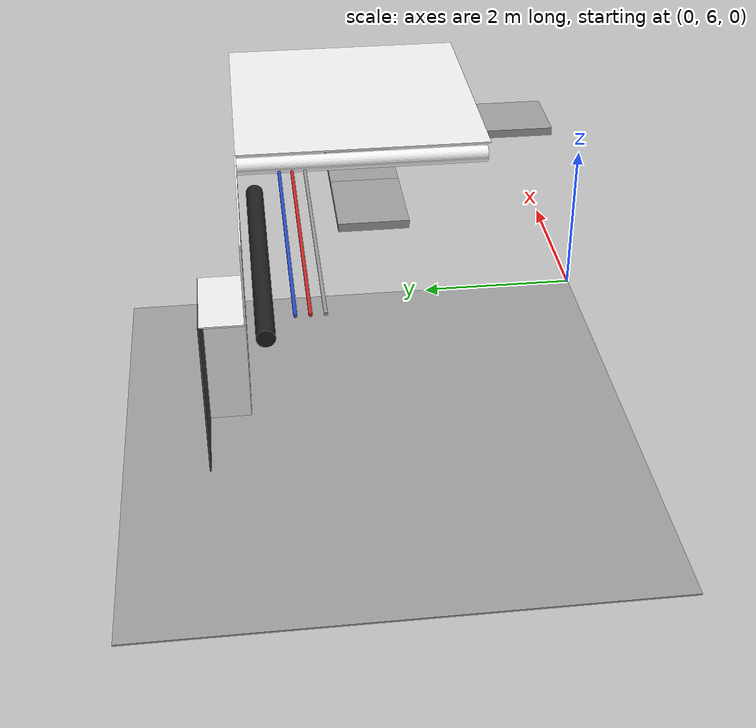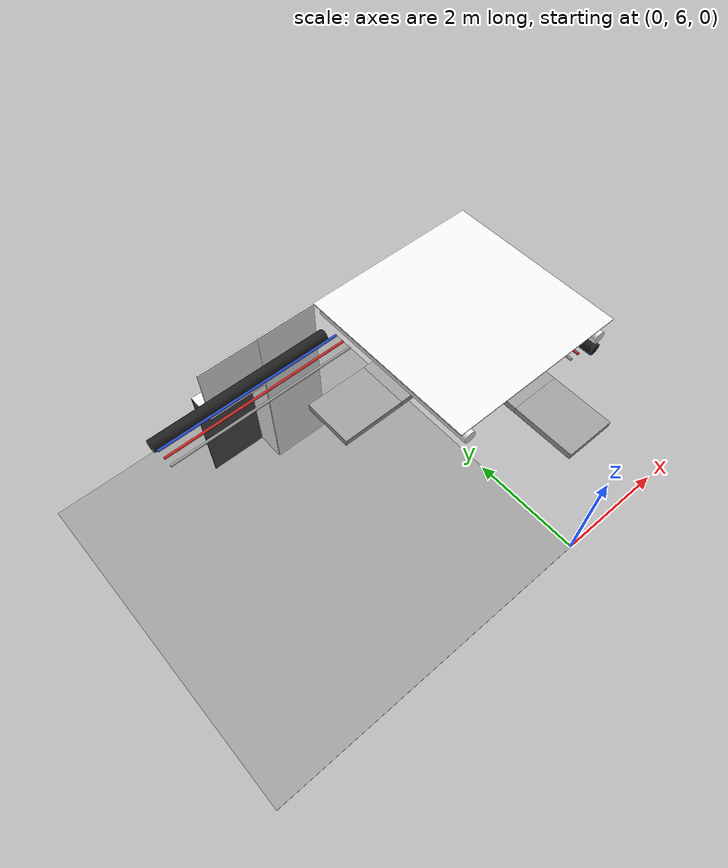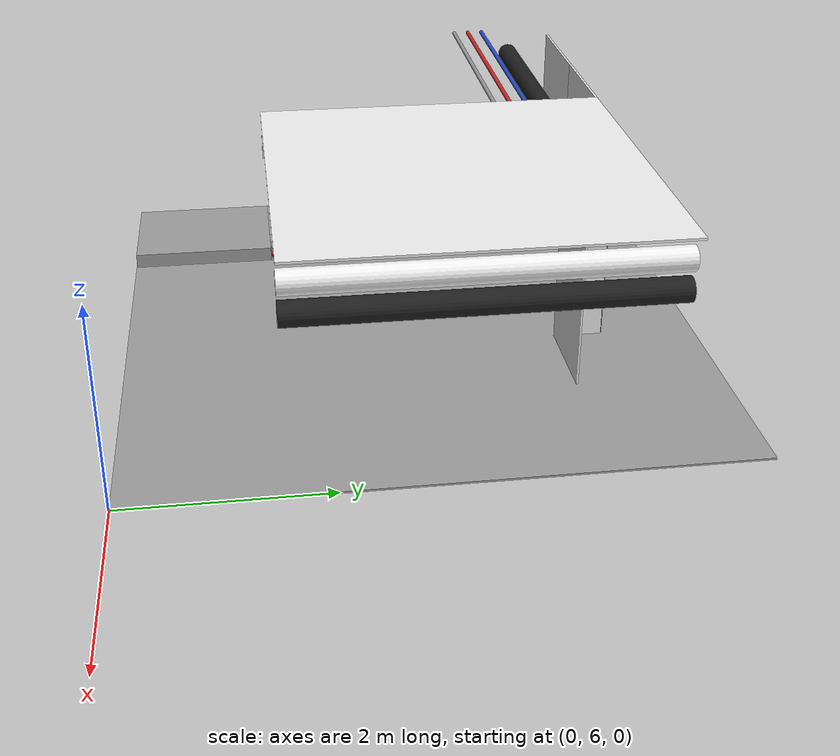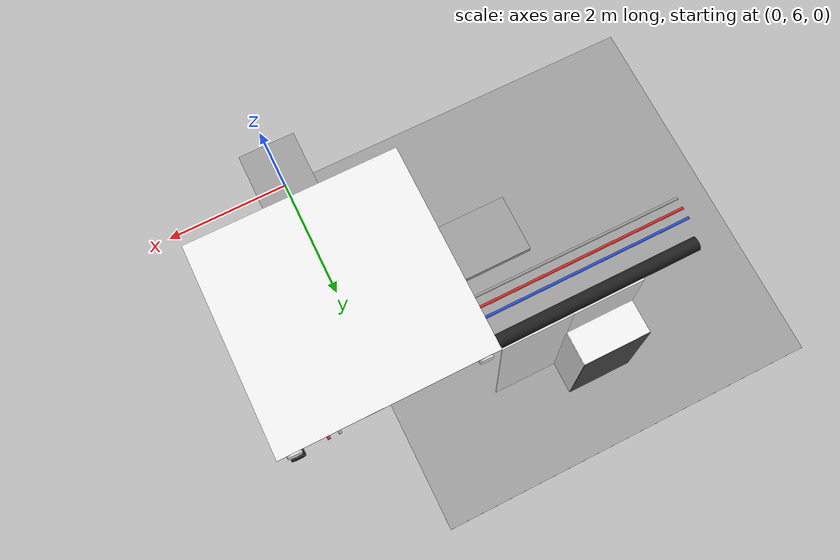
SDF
<sdf version="1.6">
 <world name="default">
  <model name="ceiling_1_0_2_1_2">
   <pose>0.0 7.0 2.55 0.0 0.0 3.14</pose>
   <link name="link_1">
    <visual name="visual">
     <geometry><box><size>0.8 1 0.1</size></box></geometry>
     <material>
      <script><uri>file://media/materials/scripts/gazebo.material</uri><name>Gazebo/Grey</name></script>
     </material>
    </visual>
    <collision name="collision"><geometry><box><size>0.8 1 0.1</size></box></geometry></collision>
   </link>
   <static>1</static>
  </model>
  <model name="wall_top_0_3_0_3">
   <static>1</static>
   <pose>0.0 9.0 3.0 1.57 0.0 0.0</pose>
   <link name="link">
    <collision name="collision"><geometry><box><size>3.0 0.02 3.0</size></box></geometry></collision>
    <visual name="visual">
     <material>
      <script><name>Gazebo/White</name><uri>file://media/materials/scripts/gazebo.material</uri></script>
     </material>
     <geometry><box><size>3.0 0.02 3.0</size></box></geometry>
    </visual>
   </link>
  </model>
  <model name="ceiling_1_0_3_0_3">
   <pose>0.0 8.0 2.55 0.0 0.0 0.0</pose>
   <link name="link_1">
    <visual name="visual">
     <geometry><box><size>0.8 1 0.1</size></box></geometry>
     <material>
      <script><uri>file://media/materials/scripts/gazebo.material</uri><name>Gazebo/Grey</name></script>
     </material>
    </visual>
    <collision name="collision"><geometry><box><size>0.8 1 0.1</size></box></geometry></collision>
   </link>
   <static>1</static>
  </model>
  <model name="ceiling_1_0_3_1_3">
   <pose>-1.0 9.0 2.55 0.0 0.0 1.57</pose>
   <link name="link_1">
    <visual name="visual">
     <geometry><box><size>0.8 1 0.1</size></box></geometry>
     <material>
      <script><uri>file://media/materials/scripts/gazebo.material</uri><name>Gazebo/Grey</name></script>
     </material>
    </visual>
    <collision name="collision"><geometry><box><size>0.8 1 0.1</size></box></geometry></collision>
   </link>
   <static>1</static>
  </model>
  <model name="white_pipe_left_0_3_0_3">
   <static>1</static>
   <pose>0.0 9.0 2.76 0.0 0.0 0.0</pose>
   <link name="link_0">
    <visual name="visual">
     <pose>-1.3 0 0 1.57 0 0</pose>
     <geometry><cylinder><radius>0.1</radius><length>3.0</length></cylinder></geometry>
     <material>
      <script><uri>file://media/materials/scripts/gazebo.material</uri><name>Gazebo/White</name></script>
     </material>
    </visual>
    <collision name="collision">
     <pose>-1.3 0 0 1.57 0 0</pose>
     <geometry><cylinder><radius>0.1</radius><length>3.0</length></cylinder></geometry>
    </collision>
   </link>
  </model>
  <model name="white_pipe_right_0_3_0_3">
   <static>1</static>
   <pose>0.0 9.0 2.76 0.0 0.0 0.0</pose>
   <link name="link_0">
    <visual name="visual">
     <pose>1.3 0 0 1.57 0 0</pose>
     <geometry><cylinder><radius>0.1</radius><length>3.0</length></cylinder></geometry>
     <material>
      <script><uri>file://media/materials/scripts/gazebo.material</uri><name>Gazebo/White</name></script>
     </material>
    </visual>
    <collision name="collision">
     <pose>1.3 0 0 1.57 0 0</pose>
     <geometry><cylinder><radius>0.1</radius><length>3.0</length></cylinder></geometry>
    </collision>
   </link>
  </model>
  <model name="black_pipe_right_0_3_0_3">
   <static>1</static>
   <pose>0.0 9.0 2.76 0.0 0.0 0.0</pose>
   <link name="link_0">
    <visual name="visual">
     <pose>1.3 0 -0.25 1.57 0 0</pose>
     <geometry><cylinder><radius>0.1</radius><length>3.0</length></cylinder></geometry>
     <material>
      <script><uri>file://media/materials/scripts/gazebo.material</uri><name>Gazebo/Black</name></script>
     </material>
    </visual>
    <collision name="collision">
     <pose>1.3 0 -0.25 1.57 0 0</pose>
     <geometry><cylinder><radius>0.1</radius><length>3.0</length></cylinder></geometry>
    </collision>
   </link>
  </model>
  <model name="grey_pipe_right_0_3_0_3">
   <static>1</static>
   <pose>0.0 9.0 2.76 0.0 0.0 0.0</pose>
   <link name="link_0">
    <visual name="visual">
     <pose>0.7 0 0 1.57 0 0</pose>
     <geometry><cylinder><radius>0.02</radius><length>3.0</length></cylinder></geometry>
     <material>
      <script><uri>file://media/materials/scripts/gazebo.material</uri><name>Gazebo/Grey</name></script>
     </material>
    </visual>
    <collision name="collision">
     <pose>0.7 0 0 1.57 0 0</pose>
     <geometry><cylinder><radius>0.02</radius><length>3.0</length></cylinder></geometry>
    </collision>
   </link>
  </model>
  <model name="red_pipe_right_0_3_0_3">
   <static>1</static>
   <pose>0.0 9.0 2.76 0.0 0.0 0.0</pose>
   <link name="link_0">
    <visual name="visual">
     <pose>0.85 0 0 1.57 0 0</pose>
     <geometry><cylinder><radius>0.02</radius><length>3.0</length></cylinder></geometry>
     <material>
      <script><uri>file://media/materials/scripts/gazebo.material</uri><name>Gazebo/Red</name></script>
     </material>
    </visual>
    <collision name="collision">
     <pose>0.85 0 0 1.57 0 0</pose>
     <geometry><cylinder><radius>0.02</radius><length>3.0</length></cylinder></geometry>
    </collision>
   </link>
  </model>
  <model name="ceiling_1_-1_3_1_1">
   <pose>-2.0 9.0 2.55 0.0 0.0 1.57</pose>
   <link name="link_1">
    <visual name="visual">
     <geometry><box><size>0.8 1 0.1</size></box></geometry>
     <material>
      <script><uri>file://media/materials/scripts/gazebo.material</uri><name>Gazebo/Grey</name></script>
     </material>
    </visual>
    <collision name="collision"><geometry><box><size>0.8 1 0.1</size></box></geometry></collision>
   </link>
   <static>1</static>
  </model>
  <model name="black_pipe_right_-1_3_0_1">
   <static>1</static>
   <pose>-3.0 9.0 2.76 0.0 0.0 1.57</pose>
   <link name="link_0">
    <visual name="visual">
     <pose>1.3 0 -0.25 1.57 0 0</pose>
     <geometry><cylinder><radius>0.1</radius><length>3.0</length></cylinder></geometry>
     <material>
      <script><uri>file://media/materials/scripts/gazebo.material</uri><name>Gazebo/Black</name></script>
     </material>
    </visual>
    <collision name="collision">
     <pose>1.3 0 -0.25 1.57 0 0</pose>
     <geometry><cylinder><radius>0.1</radius><length>3.0</length></cylinder></geometry>
    </collision>
   </link>
  </model>
  <model name="grey_pipe_right_-1_3_0_1">
   <static>1</static>
   <pose>-3.0 9.0 2.76 0.0 0.0 1.57</pose>
   <link name="link_0">
    <visual name="visual">
     <pose>0.7 0 0 1.57 0 0</pose>
     <geometry><cylinder><radius>0.02</radius><length>3.0</length></cylinder></geometry>
     <material>
      <script><uri>file://media/materials/scripts/gazebo.material</uri><name>Gazebo/Grey</name></script>
     </material>
    </visual>
    <collision name="collision">
     <pose>0.7 0 0 1.57 0 0</pose>
     <geometry><cylinder><radius>0.02</radius><length>3.0</length></cylinder></geometry>
    </collision>
   </link>
  </model>
  <model name="red_pipe_right_-1_3_0_1">
   <static>1</static>
   <pose>-3.0 9.0 2.76 0.0 0.0 1.57</pose>
   <link name="link_0">
    <visual name="visual">
     <pose>0.85 0 0 1.57 0 0</pose>
     <geometry><cylinder><radius>0.02</radius><length>3.0</length></cylinder></geometry>
     <material>
      <script><uri>file://media/materials/scripts/gazebo.material</uri><name>Gazebo/Red</name></script>
     </material>
    </visual>
    <collision name="collision">
     <pose>0.85 0 0 1.57 0 0</pose>
     <geometry><cylinder><radius>0.02</radius><length>3.0</length></cylinder></geometry>
    </collision>
   </link>
  </model>
  <model name="blue_pipe_right_-1_3_0_1">
   <static>1</static>
   <pose>-3.0 9.0 2.76 0.0 0.0 1.57</pose>
   <link name="link_0">
    <visual name="visual">
     <pose>1 0 0 1.57 0 0</pose>
     <geometry><cylinder><radius>0.02</radius><length>3.0</length></cylinder></geometry>
     <material>
      <script><uri>file://media/materials/scripts/gazebo.material</uri><name>Gazebo/Blue</name></script>
     </material>
    </visual>
    <collision name="collision">
     <pose>1 0 0 1.57 0 0</pose>
     <geometry><cylinder><radius>0.02</radius><length>3.0</length></cylinder></geometry>
    </collision>
   </link>
  </model>
  <model name="wall_right_front_right_-1_3_0_1">
   <static>1</static>
   <pose>-2.0 10.5 1.5 0.0 0.0 3.14</pose>
   <link name="link">
    <collision name="collision"><geometry><box><size>1.0 0.02 3.0</size></box></geometry></collision>
    <visual name="visual">
     <material>
      <script><name>Gazebo/White</name><uri>file://media/materials/scripts/gazebo.material</uri></script>
     </material>
     <geometry><box><size>1.0 0.02 3.0</size></box></geometry>
    </visual>
   </link>
  </model>
  <model name="wall_right_front_up_-1_3_0_1">
   <static>1</static>
   <pose>-3.0 10.5 2.5 0.0 0.0 3.14</pose>
   <link name="link">
    <collision name="collision"><geometry><box><size>1.0 0.02 1.0</size></box></geometry></collision>
    <visual name="visual">
     <material>
      <script><name>Gazebo/White</name><uri>file://media/materials/scripts/gazebo.material</uri></script>
     </material>
     <geometry><box><size>1.0 0.02 1.0</size></box></geometry>
    </visual>
   </link>
  </model>
  <model name="wall_right_inside_back_-1_3_0_1">
   <static>1</static>
   <pose>-3.0 11.0 1.0 0.0 0.0 3.14</pose>
   <link name="link">
    <collision name="collision"><geometry><box><size>1 0.02 2</size></box></geometry></collision>
    <visual name="visual">
     <material>
      <script><name>Gazebo/DarkGrey</name><uri>file://media/materials/scripts/gazebo.material</uri></script>
     </material>
     <geometry><box><size>1 0.02 2</size></box></geometry>
    </visual>
   </link>
  </model>
  <model name="wall_right_inside_right_-1_3_0_1">
   <static>1</static>
   <pose>-2.5 10.75 1.0 0.0 0.0 1.57</pose>
   <link name="link">
    <collision name="collision"><geometry><box><size>0.5 0.02 2</size></box></geometry></collision>
    <visual name="visual">
     <material>
      <script><name>Gazebo/White</name><uri>file://media/materials/scripts/gazebo.material</uri></script>
     </material>
     <geometry><box><size>0.5 0.02 2</size></box></geometry>
    </visual>
   </link>
  </model>
  <model name="wall_right_inside_top_-1_3_0_1">
   <static>1</static>
   <pose>-3.0 10.75 2.0 1.57 0.0 3.14</pose>
   <link name="link">
    <collision name="collision"><geometry><box><size>1 0.02 0.5</size></box></geometry></collision>
    <visual name="visual">
     <material>
      <script><name>Gazebo/White</name><uri>file://media/materials/scripts/gazebo.material</uri></script>
     </material>
     <geometry><box><size>1 0.02 0.5</size></box></geometry>
    </visual>
   </link>
  </model>
  <model name="wall_bottom_-1_3_0_1">
   <static>1</static>
   <pose>-3.0 9.0 0.0 0.0 0.0 1.57</pose>
   <link name="link">
    <collision name="collision"><geometry><box><size>6.0 6.0 0.02</size></box></geometry></collision>
    <visual name="visual">
     <material>
      <script><name>Gazebo/Grey</name><uri>file://media/materials/scripts/gazebo.material</uri></script>
     </material>
     <geometry><box><size>6.0 6.0 0.02</size></box></geometry>
    </visual>
   </link>
  </model>
 </world>
</sdf>
